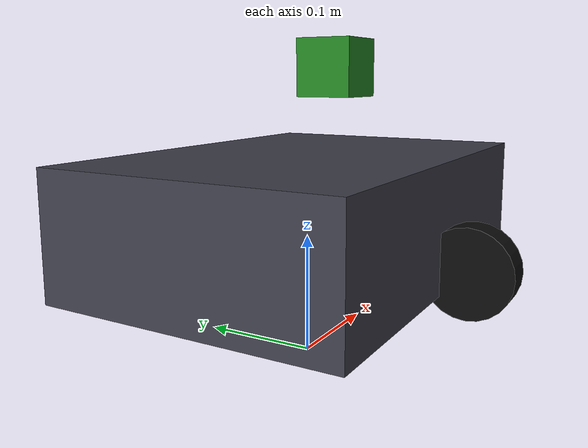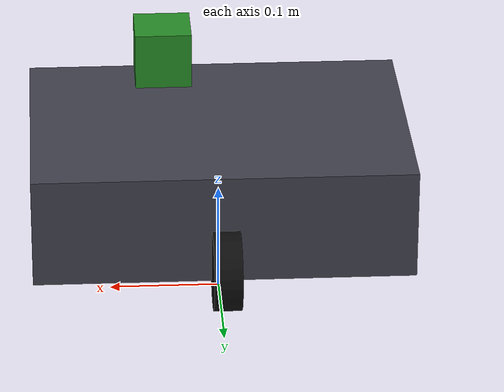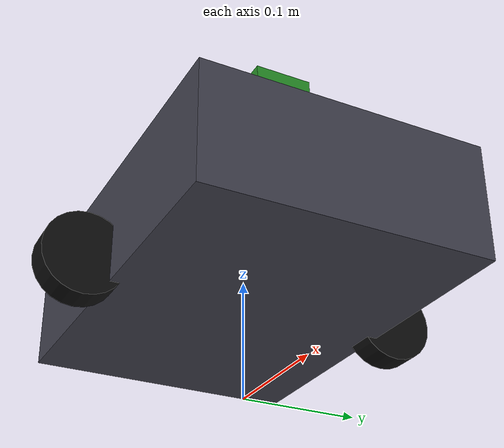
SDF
<?xml version='1.0'?>
<sdf version='1.9'>
  <model name='wheeltec'>
    <pose>0 0 0.12 0 0 0</pose>
    <static>false</static>

    <link name='base_link'>
      <inertial>
        <mass>8.0</mass>
        <inertia>
          <ixx>0.15</ixx>
          <ixy>0.0</ixy>
          <ixz>0.0</ixz>
          <iyy>0.20</iyy>
          <iyz>0.0</iyz>
          <izz>0.18</izz>
        </inertia>
      </inertial>
      <collision name='base_collision'>
        <geometry>
          <box><size>0.34 0.24 0.10</size></box>
        </geometry>
      </collision>
      <visual name='base_visual'>
        <geometry>
          <box><size>0.34 0.24 0.10</size></box>
        </geometry>
        <material>
          <ambient>0.15 0.15 0.18 1</ambient>
          <diffuse>0.25 0.25 0.30 1</diffuse>
        </material>
      </visual>
    </link>

    <link name='left_wheel_link'>
      <pose>0 0.14 -0.03 0 1.57079632679 0</pose>
      <inertial>
        <mass>0.6</mass>
        <inertia>
          <ixx>0.01</ixx>
          <ixy>0.0</ixy>
          <ixz>0.0</ixz>
          <iyy>0.01</iyy>
          <iyz>0.0</iyz>
          <izz>0.01</izz>
        </inertia>
      </inertial>
      <collision name='left_wheel_collision'>
        <geometry>
          <cylinder>
            <radius>0.035</radius>
            <length>0.025</length>
          </cylinder>
        </geometry>
      </collision>
      <visual name='left_wheel_visual'>
        <geometry>
          <cylinder>
            <radius>0.035</radius>
            <length>0.025</length>
          </cylinder>
        </geometry>
        <material>
          <ambient>0.05 0.05 0.05 1</ambient>
          <diffuse>0.05 0.05 0.05 1</diffuse>
        </material>
      </visual>
    </link>

    <link name='right_wheel_link'>
      <pose>0 -0.14 -0.03 0 1.57079632679 0</pose>
      <inertial>
        <mass>0.6</mass>
        <inertia>
          <ixx>0.01</ixx>
          <ixy>0.0</ixy>
          <ixz>0.0</ixz>
          <iyy>0.01</iyy>
          <iyz>0.0</iyz>
          <izz>0.01</izz>
        </inertia>
      </inertial>
      <collision name='right_wheel_collision'>
        <geometry>
          <cylinder>
            <radius>0.035</radius>
            <length>0.025</length>
          </cylinder>
        </geometry>
      </collision>
      <visual name='right_wheel_visual'>
        <geometry>
          <cylinder>
            <radius>0.035</radius>
            <length>0.025</length>
          </cylinder>
        </geometry>
        <material>
          <ambient>0.05 0.05 0.05 1</ambient>
          <diffuse>0.05 0.05 0.05 1</diffuse>
        </material>
      </visual>
    </link>

    <link name='lidar_link'>
      <pose>0.05 0 0.12 0 0 0</pose>
      <collision name='lidar_collision'>
        <geometry>
          <box><size>0.05 0.05 0.05</size></box>
        </geometry>
      </collision>
      <visual name='lidar_visual'>
        <geometry>
          <box><size>0.05 0.05 0.05</size></box>
        </geometry>
        <material>
          <ambient>0.15 0.55 0.15 1</ambient>
          <diffuse>0.15 0.55 0.15 1</diffuse>
        </material>
      </visual>
      <sensor name='lidar' type='gpu_lidar'>
        <always_on>true</always_on>
        <update_rate>10</update_rate>
        <visualize>true</visualize>
        <topic>scan</topic>
        <lidar>
          <scan>
            <horizontal>
              <samples>360</samples>
              <resolution>1</resolution>
              <min_angle>-3.14159265359</min_angle>
              <max_angle>3.14159265359</max_angle>
            </horizontal>
          </scan>
          <range>
            <min>0.15</min>
            <max>8.0</max>
            <resolution>0.01</resolution>
          </range>
        </lidar>
      </sensor>
    </link>

    <joint name='left_wheel_joint' type='revolute'>
      <parent>base_link</parent>
      <child>left_wheel_link</child>
      <axis>
        <xyz>0 1 0</xyz>
        <limit>
          <lower>-1e16</lower>
          <upper>1e16</upper>
        </limit>
      </axis>
    </joint>

    <joint name='right_wheel_joint' type='revolute'>
      <parent>base_link</parent>
      <child>right_wheel_link</child>
      <axis>
        <xyz>0 1 0</xyz>
        <limit>
          <lower>-1e16</lower>
          <upper>1e16</upper>
        </limit>
      </axis>
    </joint>

    <joint name='lidar_joint' type='fixed'>
      <parent>base_link</parent>
      <child>lidar_link</child>
    </joint>

    <plugin filename='gz-sim-diff-drive-system' name='gz::sim::systems::DiffDrive'>
      <left_joint>left_wheel_joint</left_joint>
      <right_joint>right_wheel_joint</right_joint>
      <wheel_separation>0.28</wheel_separation>
      <wheel_radius>0.035</wheel_radius>
      <topic>cmd_vel</topic>
      <odom_topic>odometry</odom_topic>
      <frame_id>odom</frame_id>
      <child_frame_id>base_link</child_frame_id>
    </plugin>

    <plugin filename='gz-sim-joint-state-publisher-system' name='gz::sim::systems::JointStatePublisher'/>
  </model>
</sdf>
